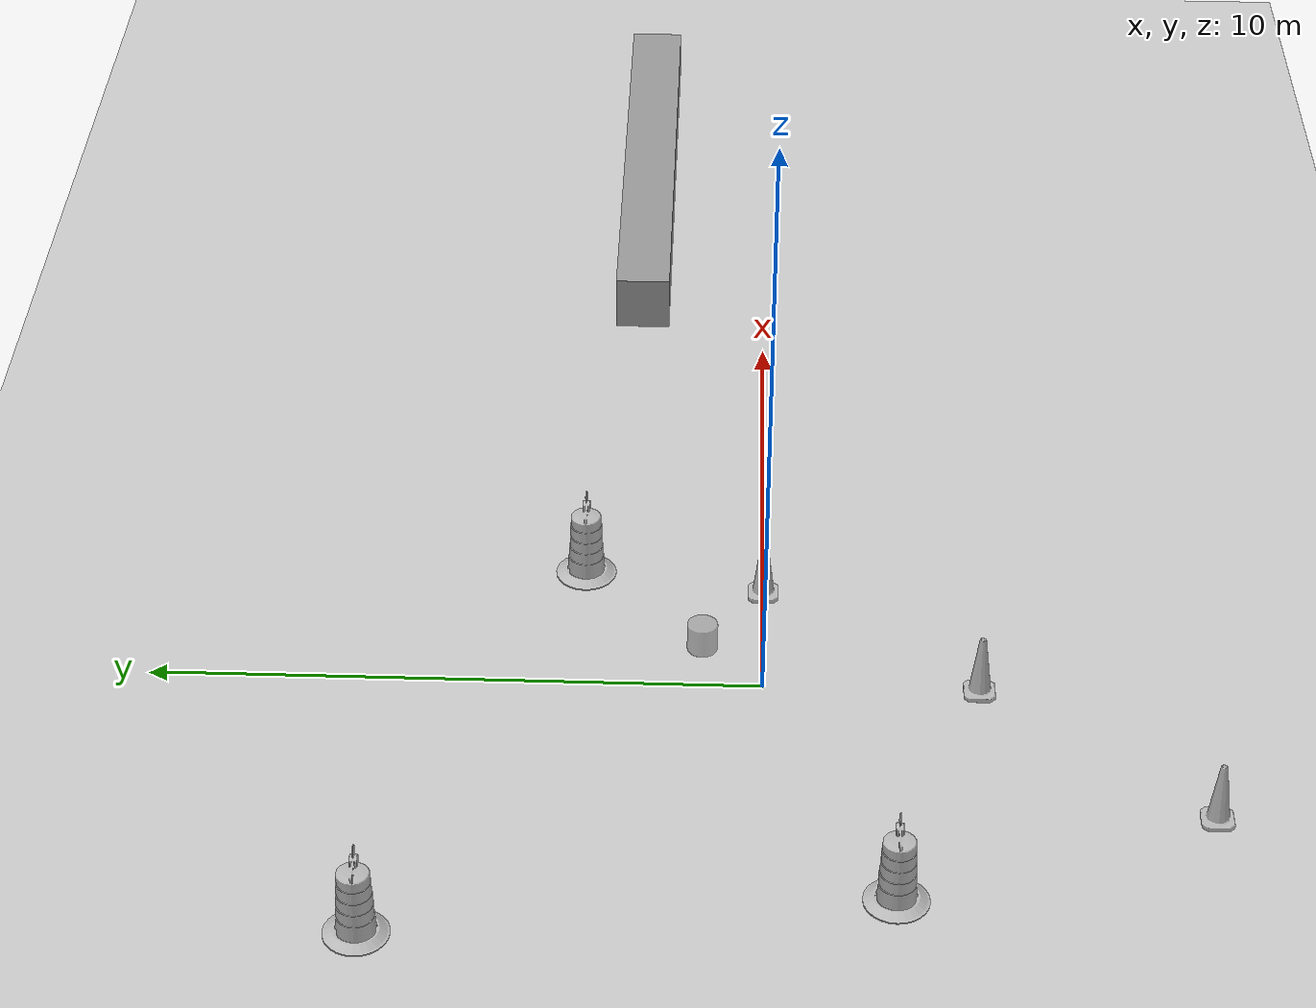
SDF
<sdf version="1.7">
 <world name="default">
  <light name="sun" type="directional">
   <pose>0 0 10 0 -0 0</pose>
   <diffuse>0.8 0.8 0.8 1</diffuse>
   <specular>0.2 0.2 0.2 1</specular>
   <attenuation>
    <range>1000</range>
    <constant>0.9</constant>
    <linear>0.01</linear>
    <quadratic>0.001</quadratic>
   </attenuation>
   <direction>-0.5 0.1 -0.9</direction>
   <spot><inner_angle>0</inner_angle><outer_angle>0</outer_angle><falloff>0</falloff></spot>
  </light>
  <model name="ground_plane">
   <static>1</static>
   <link name="link">
    <collision name="collision">
     <geometry><plane><normal>0 0 1</normal><size>100 100</size></plane></geometry>
     <surface>
      <contact><collide_bitmask>65535</collide_bitmask></contact>
      <friction><ode><mu>100</mu><mu2>50</mu2></ode></friction>
     </surface>
    </collision>
    <visual name="visual">
     <cast_shadows>0</cast_shadows>
     <geometry><plane><normal>0 0 1</normal><size>100 100</size></plane></geometry>
     <material>
      <script><uri>file://media/materials/scripts/gazebo.material</uri><name>Gazebo/Grey</name></script>
     </material>
    </visual>
   </link>
  </model>
  <model name="Indicador">
   <link name="link">
    <inertial>
     <mass>1</mass>
     <inertia><ixx>0.145833</ixx><ixy>0</ixy><ixz>0</ixz><iyy>0.145833</iyy><iyz>0</iyz><izz>0.125</izz></inertia>
    </inertial>
    <gravity>0</gravity>
    <visual name="visual">
     <geometry><cylinder><radius>0.25</radius><length>0.5</length></cylinder></geometry>
     <material>
      <script><name>Gazebo/Grey</name><uri>file://media/materials/scripts/gazebo.material</uri></script>
      <shader type="pixel"><normal_map>__default__</normal_map></shader>
      <specular>0 0.8 0 0.4</specular>
      <ambient>0.3 0.3 0.3 1</ambient>
      <diffuse>0.7 0.7 0.7 1</diffuse>
      <emissive>0 0.4 0 1</emissive>
     </material>
     <transparency>0.4</transparency>
    </visual>
   </link>
   <pose>1 1 0.25 0 0 0</pose>
   <static>0</static>
  </model>
  <model name="Construction Barrel -3 3">
   <link name="link">
    <inertial>
     <pose>0 0 0.4 0 -0 0</pose>
     <mass>500</mass>
     <inertia><ixx>51.2096</ixx><iyy>51.2096</iyy><izz>25</izz><ixy>0</ixy><ixz>0</ixz><iyz>0</iyz></inertia>
    </inertial>
    <collision name="collision">
     <geometry><mesh><uri>model://construction_barrel/meshes/construction_barrel.dae</uri></mesh></geometry>
    </collision>
    <visual name="visual">
     <geometry><mesh><uri>model://construction_barrel/meshes/construction_barrel.dae</uri></mesh></geometry>
    </visual>
   </link>
   <pose>-5 -2 0 0 -0 0</pose>
  </model>
  <model name="Construction Barrel 3 3">
   <link name="link2">
    <inertial>
     <pose>0 0 0.4 0 -0 0</pose>
     <mass>500</mass>
     <inertia><ixx>51.2096</ixx><iyy>51.2096</iyy><izz>25</izz><ixy>0</ixy><ixz>0</ixz><iyz>0</iyz></inertia>
    </inertial>
    <collision name="collision">
     <geometry><mesh><uri>model://construction_barrel/meshes/construction_barrel.dae</uri></mesh></geometry>
    </collision>
    <visual name="visual">
     <geometry><mesh><uri>model://construction_barrel/meshes/construction_barrel.dae</uri></mesh></geometry>
    </visual>
   </link>
   <pose>3 3 0 0 -0 0</pose>
  </model>
  <model name="Construction Barrel -6 6">
   <link name="link2">
    <inertial>
     <pose>0 0 0.4 0 -0 0</pose>
     <mass>500</mass>
     <inertia><ixx>51.2096</ixx><iyy>51.2096</iyy><izz>25</izz><ixy>0</ixy><ixz>0</ixz><iyz>0</iyz></inertia>
    </inertial>
    <collision name="collision">
     <geometry><mesh><uri>model://construction_barrel/meshes/construction_barrel.dae</uri></mesh></geometry>
    </collision>
    <visual name="visual">
     <geometry><mesh><uri>model://construction_barrel/meshes/construction_barrel.dae</uri></mesh></geometry>
    </visual>
   </link>
   <pose>-6 6 0 0 -0 0</pose>
  </model>
  <model name="Construction Cone -7 -3">
   <link name="link">
    <collision name="collision">
     <geometry>
      <mesh><scale>10 10 10</scale><uri>model://construction_cone/meshes/construction_cone.dae</uri></mesh>
     </geometry>
    </collision>
    <visual name="visual">
     <geometry>
      <mesh><scale>10 10 10</scale><uri>model://construction_cone/meshes/construction_cone.dae</uri></mesh>
     </geometry>
    </visual>
    <inertial>
     <inertia><ixx>1</ixx><ixy>0</ixy><ixz>0</ixz><iyy>1</iyy><iyz>0</iyz><izz>1</izz></inertia>
     <mass>1</mass>
    </inertial>
   </link>
   <pose>-3 -7 0 0 -0 0</pose>
  </model>
  <model name="Construction Cone 0 -3o5">
   <link name="link">
    <collision name="collision">
     <geometry>
      <mesh><scale>10 10 10</scale><uri>model://construction_cone/meshes/construction_cone.dae</uri></mesh>
     </geometry>
    </collision>
    <visual name="visual">
     <geometry>
      <mesh><scale>10 10 10</scale><uri>model://construction_cone/meshes/construction_cone.dae</uri></mesh>
     </geometry>
    </visual>
    <inertial>
     <inertia><ixx>1</ixx><ixy>0</ixy><ixz>0</ixz><iyy>1</iyy><iyz>0</iyz><izz>1</izz></inertia>
     <mass>1</mass>
    </inertial>
   </link>
   <pose>0 -3.5 0 0 -0 0</pose>
  </model>
  <model name="Construction Cone 2o5 0">
   <link name="link">
    <collision name="collision">
     <geometry>
      <mesh><scale>10 10 10</scale><uri>model://construction_cone/meshes/construction_cone.dae</uri></mesh>
     </geometry>
    </collision>
    <visual name="visual">
     <geometry>
      <mesh><scale>10 10 10</scale><uri>model://construction_cone/meshes/construction_cone.dae</uri></mesh>
     </geometry>
    </visual>
    <inertial>
     <inertia><ixx>1</ixx><ixy>0</ixy><ixz>0</ixz><iyy>1</iyy><iyz>0</iyz><izz>1</izz></inertia>
     <mass>1</mass>
    </inertial>
   </link>
   <pose>2.5 0 0 0 -0 0</pose>
  </model>
  <model name="pared larga">
   <link name="link">
    <inertial>
     <mass>20</mass>
     <inertia><ixx>3.33333</ixx><ixy>0</ixy><ixz>0</ixz><iyy>168.333</iyy><iyz>0</iyz><izz>168.333</izz></inertia>
    </inertial>
    <pose>5.80738 -0.709782 0 0 -0 0</pose>
    <visual name="visual">
     <geometry><box><size>10 1 1</size></box></geometry>
     <material>
      <script><name>Gazebo/Grey</name><uri>file://media/materials/scripts/gazebo.material</uri></script>
      <shader type="pixel"><normal_map>__default__</normal_map></shader>
      <ambient>0.3 0.3 0.3 1</ambient>
      <diffuse>0.7 0.7 0.7 1</diffuse>
      <specular>0.01 0.01 0.01 1</specular>
      <emissive>0 0 0 1</emissive>
     </material>
    </visual>
    <collision name="collision">
     <geometry><box><size>10 1 1</size></box></geometry>
     <surface>
      <friction>
       <ode><mu>1</mu><mu2>1</mu2><fdir1>0 0 0</fdir1><slip1>0</slip1><slip2>0</slip2></ode>
       <torsional>
        <coefficient>1</coefficient>
        <patch_radius>0</patch_radius>
        <surface_radius>0</surface_radius>
        <use_patch_radius>1</use_patch_radius>
        <ode><slip>0</slip></ode>
       </torsional>
      </friction>
      <bounce><restitution_coefficient>0</restitution_coefficient><threshold>1e+06</threshold></bounce>
      <contact>
       <collide_without_contact>0</collide_without_contact>
       <collide_without_contact_bitmask>1</collide_without_contact_bitmask>
       <collide_bitmask>1</collide_bitmask>
       <ode>
        <soft_cfm>0</soft_cfm>
        <soft_erp>0.2</soft_erp>
        <kp>1e+13</kp>
        <kd>1</kd>
        <max_vel>0.01</max_vel>
        <min_depth>0</min_depth>
       </ode>
       <bullet>
        <split_impulse>1</split_impulse>
        <split_impulse_penetration_threshold>-0.01</split_impulse_penetration_threshold>
        <soft_cfm>0</soft_cfm>
        <soft_erp>0.2</soft_erp>
        <kp>1e+13</kp>
        <kd>1</kd>
       </bullet>
      </contact>
     </surface>
    </collision>
   </link>
   <static>0</static>
   <pose>10 3 0.5 0 0 0</pose>
  </model>
  <gravity>0 0 -9.8</gravity>
  <magnetic_field>6e-06 2.3e-05 -4.2e-05</magnetic_field>
  <atmosphere type="adiabatic"/>
  <physics type="ode">
   <max_step_size>0.001</max_step_size>
   <real_time_factor>1</real_time_factor>
   <real_time_update_rate>1000</real_time_update_rate>
  </physics>
  <scene><sky><clouds><speed>5</speed></clouds></sky></scene>
  <spherical_coordinates>
   <surface_model>EARTH_WGS84</surface_model>
   <latitude_deg>0</latitude_deg>
   <longitude_deg>0</longitude_deg>
   <elevation>0</elevation>
   <heading_deg>0</heading_deg>
  </spherical_coordinates>
  <plugin name="gazebo_ros_state" filename="libgazebo_ros_state.so">
   <ros><namespace>/gazebo</namespace></ros>
   <update_rate>100.0</update_rate>
  </plugin>
 </world>
</sdf>
